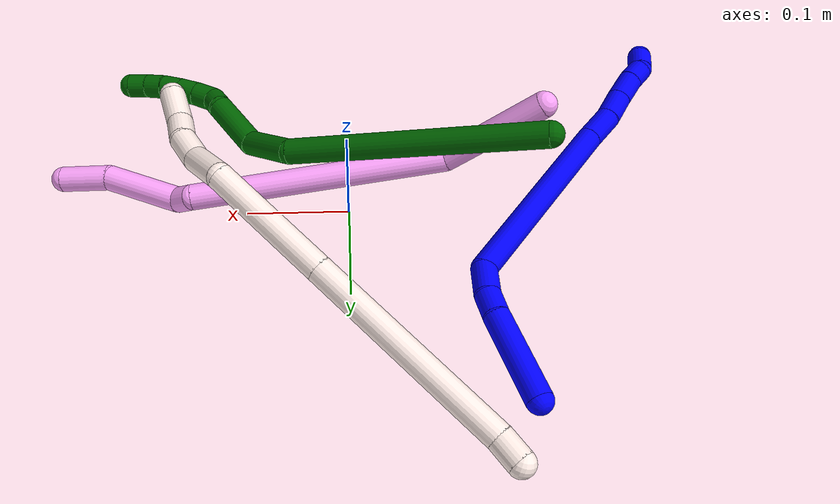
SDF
<sdf version="1.7">
 <world name="default">
  <model name="1">
   <static>0</static>
   <link name="1">
    <collision name="collision-cylinder-e_1_1_4">
     <pose>-0.011994 0.00322 0.041708 -0.077057 -0.279239 0.010834</pose>
     <geometry><cylinder><radius>0.0125</radius><length>0.087035</length></cylinder></geometry>
     <surface>
      <friction><ode><mu>1.16</mu><mu2>1.16</mu2><slip1>0</slip1><slip2>0</slip2></ode></friction>
      <contact><ode><kp>1e+06</kp><kd>1</kd><max_vel>0</max_vel><min_depth>0.001</min_depth></ode></contact>
     </surface>
    </collision>
    <visual name="visual-cylinder-e_1_1_4">
     <pose>-0.011994 0.00322 0.041708 -0.077057 -0.279239 0.010834</pose>
     <geometry><cylinder><radius>0.0125</radius><length>0.087035</length></cylinder></geometry>
     <material><ambient>0 0 1 1</ambient></material>
    </visual>
    <collision name="collision-cylinder-e_2_4_5">
     <pose>-0.026558 0.005566 0.095098 0.074744 -0.215849 -0.008102</pose>
     <geometry><cylinder><radius>0.0125</radius><length>0.023987</length></cylinder></geometry>
     <surface>
      <friction><ode><mu>1.16</mu><mu2>1.16</mu2><slip1>0</slip1><slip2>0</slip2></ode></friction>
      <contact><ode><kp>1e+06</kp><kd>1</kd><max_vel>0</max_vel><min_depth>0.001</min_depth></ode></contact>
     </surface>
    </collision>
    <visual name="visual-cylinder-e_2_4_5">
     <pose>-0.026558 0.005566 0.095098 0.074744 -0.215849 -0.008102</pose>
     <geometry><cylinder><radius>0.0125</radius><length>0.023987</length></cylinder></geometry>
     <material><ambient>0 0 1 1</ambient></material>
    </visual>
    <collision name="collision-cylinder-e_3_5_6">
     <pose>-0.032827 -0.000158 0.121903 0.310249 -0.228925 -0.035953</pose>
     <geometry><cylinder><radius>0.0125</radius><length>0.032613</length></cylinder></geometry>
     <surface>
      <friction><ode><mu>1.16</mu><mu2>1.16</mu2><slip1>0</slip1><slip2>0</slip2></ode></friction>
      <contact><ode><kp>1e+06</kp><kd>1</kd><max_vel>0</max_vel><min_depth>0.001</min_depth></ode></contact>
     </surface>
    </collision>
    <visual name="visual-cylinder-e_3_5_6">
     <pose>-0.032827 -0.000158 0.121903 0.310249 -0.228925 -0.035953</pose>
     <geometry><cylinder><radius>0.0125</radius><length>0.032613</length></cylinder></geometry>
     <material><ambient>0 0 1 1</ambient></material>
    </visual>
    <collision name="collision-cylinder-e_4_6_7">
     <pose>-0.081364 -0.08303 0.19201 0.956925 -0.43914 -0.23047</pose>
     <geometry><cylinder><radius>0.0125</radius><length>0.210915</length></cylinder></geometry>
     <surface>
      <friction><ode><mu>1.16</mu><mu2>1.16</mu2><slip1>0</slip1><slip2>0</slip2></ode></friction>
      <contact><ode><kp>1e+06</kp><kd>1</kd><max_vel>0</max_vel><min_depth>0.001</min_depth></ode></contact>
     </surface>
    </collision>
    <visual name="visual-cylinder-e_4_6_7">
     <pose>-0.081364 -0.08303 0.19201 0.956925 -0.43914 -0.23047</pose>
     <geometry><cylinder><radius>0.0125</radius><length>0.210915</length></cylinder></geometry>
     <material><ambient>0 0 1 1</ambient></material>
    </visual>
    <collision name="collision-cylinder-e_5_7_8">
     <pose>-0.134882 -0.175428 0.255885 1.01679 -0.474532 -0.267896</pose>
     <geometry><cylinder><radius>0.0125</radius><length>0.038003</length></cylinder></geometry>
     <surface>
      <friction><ode><mu>1.16</mu><mu2>1.16</mu2><slip1>0</slip1><slip2>0</slip2></ode></friction>
      <contact><ode><kp>1e+06</kp><kd>1</kd><max_vel>0</max_vel><min_depth>0.001</min_depth></ode></contact>
     </surface>
    </collision>
    <visual name="visual-cylinder-e_5_7_8">
     <pose>-0.134882 -0.175428 0.255885 1.01679 -0.474532 -0.267896</pose>
     <geometry><cylinder><radius>0.0125</radius><length>0.038003</length></cylinder></geometry>
     <material><ambient>0 0 1 1</ambient></material>
    </visual>
    <collision name="collision-cylinder-e_6_8_9">
     <pose>-0.15142 -0.199662 0.273566 0.842749 -0.536527 -0.245187</pose>
     <geometry><cylinder><radius>0.0125</radius><length>0.030735</length></cylinder></geometry>
     <surface>
      <friction><ode><mu>1.16</mu><mu2>1.16</mu2><slip1>0</slip1><slip2>0</slip2></ode></friction>
      <contact><ode><kp>1e+06</kp><kd>1</kd><max_vel>0</max_vel><min_depth>0.001</min_depth></ode></contact>
     </surface>
    </collision>
    <visual name="visual-cylinder-e_6_8_9">
     <pose>-0.15142 -0.199662 0.273566 0.842749 -0.536527 -0.245187</pose>
     <geometry><cylinder><radius>0.0125</radius><length>0.030735</length></cylinder></geometry>
     <material><ambient>0 0 1 1</ambient></material>
    </visual>
    <collision name="collision-cylinder-e_7_9_10">
     <pose>-0.167282 -0.219442 0.290336 0.893322 -0.561344 -0.274407</pose>
     <geometry><cylinder><radius>0.0125</radius><length>0.030082</length></cylinder></geometry>
     <surface>
      <friction><ode><mu>1.16</mu><mu2>1.16</mu2><slip1>0</slip1><slip2>0</slip2></ode></friction>
      <contact><ode><kp>1e+06</kp><kd>1</kd><max_vel>0</max_vel><min_depth>0.001</min_depth></ode></contact>
     </surface>
    </collision>
    <visual name="visual-cylinder-e_7_9_10">
     <pose>-0.167282 -0.219442 0.290336 0.893322 -0.561344 -0.274407</pose>
     <geometry><cylinder><radius>0.0125</radius><length>0.030082</length></cylinder></geometry>
     <material><ambient>0 0 1 1</ambient></material>
    </visual>
    <collision name="collision-cylinder-e_8_10_11">
     <pose>-0.180578 -0.23702 0.302802 1.04102 -0.537574 -0.313215</pose>
     <geometry><cylinder><radius>0.0125</radius><length>0.020661</length></cylinder></geometry>
     <surface>
      <friction><ode><mu>1.16</mu><mu2>1.16</mu2><slip1>0</slip1><slip2>0</slip2></ode></friction>
      <contact><ode><kp>1e+06</kp><kd>1</kd><max_vel>0</max_vel><min_depth>0.001</min_depth></ode></contact>
     </surface>
    </collision>
    <visual name="visual-cylinder-e_8_10_11">
     <pose>-0.180578 -0.23702 0.302802 1.04102 -0.537574 -0.313215</pose>
     <geometry><cylinder><radius>0.0125</radius><length>0.020661</length></cylinder></geometry>
     <material><ambient>0 0 1 1</ambient></material>
    </visual>
    <collision name="collision-cylinder-e_9_11_2">
     <pose>-0.189202 -0.250807 0.318236 0.51037 -0.259677 -0.0681</pose>
     <geometry><cylinder><radius>0.0125</radius><length>0.025969</length></cylinder></geometry>
     <surface>
      <friction><ode><mu>1.16</mu><mu2>1.16</mu2><slip1>0</slip1><slip2>0</slip2></ode></friction>
      <contact><ode><kp>1e+06</kp><kd>1</kd><max_vel>0</max_vel><min_depth>0.001</min_depth></ode></contact>
     </surface>
    </collision>
    <visual name="visual-cylinder-e_9_11_2">
     <pose>-0.189202 -0.250807 0.318236 0.51037 -0.259677 -0.0681</pose>
     <geometry><cylinder><radius>0.0125</radius><length>0.025969</length></cylinder></geometry>
     <material><ambient>0 0 1 1</ambient></material>
    </visual>
    <collision name="collision-sphere-2">
     <pose>-0.192536 -0.256938 0.329186 0 -0 0</pose>
     <geometry><sphere><radius>0.0125</radius></sphere></geometry>
     <surface>
      <friction><ode><mu>1.16</mu><mu2>1.16</mu2><slip1>0</slip1><slip2>0</slip2></ode></friction>
      <contact><ode><kp>1e+06</kp><kd>1</kd><max_vel>0</max_vel><min_depth>0.001</min_depth></ode></contact>
     </surface>
    </collision>
    <visual name="visual-sphere-2">
     <pose>-0.192536 -0.256938 0.329186 0 -0 0</pose>
     <geometry><sphere><radius>0.0125</radius></sphere></geometry>
     <material><ambient>0 0 1 1</ambient></material>
    </visual>
    <collision name="collision-sphere-11">
     <pose>-0.185868 -0.244677 0.307286 0 -0 0</pose>
     <geometry><sphere><radius>0.0125</radius></sphere></geometry>
     <surface>
      <friction><ode><mu>1.16</mu><mu2>1.16</mu2><slip1>0</slip1><slip2>0</slip2></ode></friction>
      <contact><ode><kp>1e+06</kp><kd>1</kd><max_vel>0</max_vel><min_depth>0.001</min_depth></ode></contact>
     </surface>
    </collision>
    <visual name="visual-sphere-11">
     <pose>-0.185868 -0.244677 0.307286 0 -0 0</pose>
     <geometry><sphere><radius>0.0125</radius></sphere></geometry>
     <material><ambient>0 0 1 1</ambient></material>
    </visual>
    <collision name="collision-sphere-10">
     <pose>-0.175288 -0.229363 0.298318 0 -0 0</pose>
     <geometry><sphere><radius>0.0125</radius></sphere></geometry>
     <surface>
      <friction><ode><mu>1.16</mu><mu2>1.16</mu2><slip1>0</slip1><slip2>0</slip2></ode></friction>
      <contact><ode><kp>1e+06</kp><kd>1</kd><max_vel>0</max_vel><min_depth>0.001</min_depth></ode></contact>
     </surface>
    </collision>
    <visual name="visual-sphere-10">
     <pose>-0.175288 -0.229363 0.298318 0 -0 0</pose>
     <geometry><sphere><radius>0.0125</radius></sphere></geometry>
     <material><ambient>0 0 1 1</ambient></material>
    </visual>
    <collision name="collision-sphere-9">
     <pose>-0.159275 -0.209521 0.282355 0 -0 0</pose>
     <geometry><sphere><radius>0.0125</radius></sphere></geometry>
     <surface>
      <friction><ode><mu>1.16</mu><mu2>1.16</mu2><slip1>0</slip1><slip2>0</slip2></ode></friction>
      <contact><ode><kp>1e+06</kp><kd>1</kd><max_vel>0</max_vel><min_depth>0.001</min_depth></ode></contact>
     </surface>
    </collision>
    <visual name="visual-sphere-9">
     <pose>-0.159275 -0.209521 0.282355 0 -0 0</pose>
     <geometry><sphere><radius>0.0125</radius></sphere></geometry>
     <material><ambient>0 0 1 1</ambient></material>
    </visual>
    <collision name="collision-sphere-4">
     <pose>-0.023989 0.006441 0.083416 0 -0 0</pose>
     <geometry><sphere><radius>0.0125</radius></sphere></geometry>
     <surface>
      <friction><ode><mu>1.16</mu><mu2>1.16</mu2><slip1>0</slip1><slip2>0</slip2></ode></friction>
      <contact><ode><kp>1e+06</kp><kd>1</kd><max_vel>0</max_vel><min_depth>0.001</min_depth></ode></contact>
     </surface>
    </collision>
    <visual name="visual-sphere-4">
     <pose>-0.023989 0.006441 0.083416 0 -0 0</pose>
     <geometry><sphere><radius>0.0125</radius></sphere></geometry>
     <material><ambient>0 0 1 1</ambient></material>
    </visual>
    <collision name="collision-sphere-1">
     <geometry><sphere><radius>0.0125</radius></sphere></geometry>
     <surface>
      <friction><ode><mu>1.16</mu><mu2>1.16</mu2><slip1>0</slip1><slip2>0</slip2></ode></friction>
      <contact><ode><kp>1e+06</kp><kd>1</kd><max_vel>0</max_vel><min_depth>0.001</min_depth></ode></contact>
     </surface>
    </collision>
    <visual name="visual-sphere-1">
     <geometry><sphere><radius>0.0125</radius></sphere></geometry>
     <material><ambient>0 0 1 1</ambient></material>
    </visual>
    <collision name="collision-sphere-8">
     <pose>-0.143565 -0.189802 0.264777 0 -0 0</pose>
     <geometry><sphere><radius>0.0125</radius></sphere></geometry>
     <surface>
      <friction><ode><mu>1.16</mu><mu2>1.16</mu2><slip1>0</slip1><slip2>0</slip2></ode></friction>
      <contact><ode><kp>1e+06</kp><kd>1</kd><max_vel>0</max_vel><min_depth>0.001</min_depth></ode></contact>
     </surface>
    </collision>
    <visual name="visual-sphere-8">
     <pose>-0.143565 -0.189802 0.264777 0 -0 0</pose>
     <geometry><sphere><radius>0.0125</radius></sphere></geometry>
     <material><ambient>0 0 1 1</ambient></material>
    </visual>
    <collision name="collision-sphere-5">
     <pose>-0.029126 0.004691 0.10678 0 -0 0</pose>
     <geometry><sphere><radius>0.0125</radius></sphere></geometry>
     <surface>
      <friction><ode><mu>1.16</mu><mu2>1.16</mu2><slip1>0</slip1><slip2>0</slip2></ode></friction>
      <contact><ode><kp>1e+06</kp><kd>1</kd><max_vel>0</max_vel><min_depth>0.001</min_depth></ode></contact>
     </surface>
    </collision>
    <visual name="visual-sphere-5">
     <pose>-0.029126 0.004691 0.10678 0 -0 0</pose>
     <geometry><sphere><radius>0.0125</radius></sphere></geometry>
     <material><ambient>0 0 1 1</ambient></material>
    </visual>
    <collision name="collision-sphere-6">
     <pose>-0.036527 -0.005006 0.137026 0 -0 0</pose>
     <geometry><sphere><radius>0.0125</radius></sphere></geometry>
     <surface>
      <friction><ode><mu>1.16</mu><mu2>1.16</mu2><slip1>0</slip1><slip2>0</slip2></ode></friction>
      <contact><ode><kp>1e+06</kp><kd>1</kd><max_vel>0</max_vel><min_depth>0.001</min_depth></ode></contact>
     </surface>
    </collision>
    <visual name="visual-sphere-6">
     <pose>-0.036527 -0.005006 0.137026 0 -0 0</pose>
     <geometry><sphere><radius>0.0125</radius></sphere></geometry>
     <material><ambient>0 0 1 1</ambient></material>
    </visual>
    <collision name="collision-sphere-7">
     <pose>-0.1262 -0.161055 0.246993 0 -0 0</pose>
     <geometry><sphere><radius>0.0125</radius></sphere></geometry>
     <surface>
      <friction><ode><mu>1.16</mu><mu2>1.16</mu2><slip1>0</slip1><slip2>0</slip2></ode></friction>
      <contact><ode><kp>1e+06</kp><kd>1</kd><max_vel>0</max_vel><min_depth>0.001</min_depth></ode></contact>
     </surface>
    </collision>
    <visual name="visual-sphere-7">
     <pose>-0.1262 -0.161055 0.246993 0 -0 0</pose>
     <geometry><sphere><radius>0.0125</radius></sphere></geometry>
     <material><ambient>0 0 1 1</ambient></material>
    </visual>
    <inertial>
     <pose>-0.086737 -0.095837 0.183543 0 -0 0</pose>
     <mass>0.5</mass>
     <inertia>
      <ixx>0.000592</ixx>
      <ixy>0</ixy>
      <ixz>0</ixz>
      <iyy>0.000395</iyy>
      <iyz>0</iyz>
      <izz>0.00098</izz>
     </inertia>
    </inertial>
   </link>
   <pose>-0.155466 0.221519 0.012494 2.12774 1.12628 0.865992</pose>
  </model>
  <model name="4">
   <static>0</static>
   <link name="4">
    <collision name="collision-cylinder-e_1_1_4">
     <pose>0.031551 -0.006868 0.042739 0.159323 0.629833 0.051999</pose>
     <geometry><cylinder><radius>0.0125</radius><length>0.107131</length></cylinder></geometry>
     <surface>
      <friction><ode><mu>1.16</mu><mu2>1.16</mu2><slip1>0</slip1><slip2>0</slip2></ode></friction>
      <contact><ode><kp>1e+06</kp><kd>1</kd><max_vel>0</max_vel><min_depth>0.001</min_depth></ode></contact>
     </surface>
    </collision>
    <visual name="visual-cylinder-e_1_1_4">
     <pose>0.031551 -0.006868 0.042739 0.159323 0.629833 0.051999</pose>
     <geometry><cylinder><radius>0.0125</radius><length>0.107131</length></cylinder></geometry>
     <material><ambient>1 0.65098 0.996078 1</ambient></material>
    </visual>
    <collision name="collision-cylinder-e_2_4_5">
     <pose>0.17587 -0.006479 0.134181 -0.147898 1.1591 -0.096904</pose>
     <geometry><cylinder><radius>0.0125</radius><length>0.246101</length></cylinder></geometry>
     <surface>
      <friction><ode><mu>1.16</mu><mu2>1.16</mu2><slip1>0</slip1><slip2>0</slip2></ode></friction>
      <contact><ode><kp>1e+06</kp><kd>1</kd><max_vel>0</max_vel><min_depth>0.001</min_depth></ode></contact>
     </surface>
    </collision>
    <visual name="visual-cylinder-e_2_4_5">
     <pose>0.17587 -0.006479 0.134181 -0.147898 1.1591 -0.096904</pose>
     <geometry><cylinder><radius>0.0125</radius><length>0.246101</length></cylinder></geometry>
     <material><ambient>1 0.65098 0.996078 1</ambient></material>
    </visual>
    <collision name="collision-cylinder-e_3_5_6">
     <pose>0.293516 0.00282 0.191477 -0.233365 0.504453 -0.060398</pose>
     <geometry><cylinder><radius>0.0125</radius><length>0.020179</length></cylinder></geometry>
     <surface>
      <friction><ode><mu>1.16</mu><mu2>1.16</mu2><slip1>0</slip1><slip2>0</slip2></ode></friction>
      <contact><ode><kp>1e+06</kp><kd>1</kd><max_vel>0</max_vel><min_depth>0.001</min_depth></ode></contact>
     </surface>
    </collision>
    <visual name="visual-cylinder-e_3_5_6">
     <pose>0.293516 0.00282 0.191477 -0.233365 0.504453 -0.060398</pose>
     <geometry><cylinder><radius>0.0125</radius><length>0.020179</length></cylinder></geometry>
     <material><ambient>1 0.65098 0.996078 1</ambient></material>
    </visual>
    <collision name="collision-cylinder-e_4_6_7">
     <pose>0.327185 0.024846 0.216945 -0.869588 0.833358 -0.405466</pose>
     <geometry><cylinder><radius>0.0125</radius><length>0.077797</length></cylinder></geometry>
     <surface>
      <friction><ode><mu>1.16</mu><mu2>1.16</mu2><slip1>0</slip1><slip2>0</slip2></ode></friction>
      <contact><ode><kp>1e+06</kp><kd>1</kd><max_vel>0</max_vel><min_depth>0.001</min_depth></ode></contact>
     </surface>
    </collision>
    <visual name="visual-cylinder-e_4_6_7">
     <pose>0.327185 0.024846 0.216945 -0.869588 0.833358 -0.405466</pose>
     <geometry><cylinder><radius>0.0125</radius><length>0.077797</length></cylinder></geometry>
     <material><ambient>1 0.65098 0.996078 1</ambient></material>
    </visual>
    <collision name="collision-cylinder-e_5_7_2">
     <pose>0.376702 0.049994 0.245608 -0.412828 1.01504 -0.231848</pose>
     <geometry><cylinder><radius>0.0125</radius><length>0.048792</length></cylinder></geometry>
     <surface>
      <friction><ode><mu>1.16</mu><mu2>1.16</mu2><slip1>0</slip1><slip2>0</slip2></ode></friction>
      <contact><ode><kp>1e+06</kp><kd>1</kd><max_vel>0</max_vel><min_depth>0.001</min_depth></ode></contact>
     </surface>
    </collision>
    <visual name="visual-cylinder-e_5_7_2">
     <pose>0.376702 0.049994 0.245608 -0.412828 1.01504 -0.231848</pose>
     <geometry><cylinder><radius>0.0125</radius><length>0.048792</length></cylinder></geometry>
     <material><ambient>1 0.65098 0.996078 1</ambient></material>
    </visual>
    <collision name="collision-sphere-2">
     <pose>0.397426 0.055158 0.257398 0 -0 0</pose>
     <geometry><sphere><radius>0.0125</radius></sphere></geometry>
     <surface>
      <friction><ode><mu>1.16</mu><mu2>1.16</mu2><slip1>0</slip1><slip2>0</slip2></ode></friction>
      <contact><ode><kp>1e+06</kp><kd>1</kd><max_vel>0</max_vel><min_depth>0.001</min_depth></ode></contact>
     </surface>
    </collision>
    <visual name="visual-sphere-2">
     <pose>0.397426 0.055158 0.257398 0 -0 0</pose>
     <geometry><sphere><radius>0.0125</radius></sphere></geometry>
     <material><ambient>1 0.65098 0.996078 1</ambient></material>
    </visual>
    <collision name="collision-sphere-7">
     <pose>0.355977 0.044831 0.233819 0 -0 0</pose>
     <geometry><sphere><radius>0.0125</radius></sphere></geometry>
     <surface>
      <friction><ode><mu>1.16</mu><mu2>1.16</mu2><slip1>0</slip1><slip2>0</slip2></ode></friction>
      <contact><ode><kp>1e+06</kp><kd>1</kd><max_vel>0</max_vel><min_depth>0.001</min_depth></ode></contact>
     </surface>
    </collision>
    <visual name="visual-sphere-7">
     <pose>0.355977 0.044831 0.233819 0 -0 0</pose>
     <geometry><sphere><radius>0.0125</radius></sphere></geometry>
     <material><ambient>1 0.65098 0.996078 1</ambient></material>
    </visual>
    <collision name="collision-sphere-6">
     <pose>0.298392 0.004862 0.200071 0 -0 0</pose>
     <geometry><sphere><radius>0.0125</radius></sphere></geometry>
     <surface>
      <friction><ode><mu>1.16</mu><mu2>1.16</mu2><slip1>0</slip1><slip2>0</slip2></ode></friction>
      <contact><ode><kp>1e+06</kp><kd>1</kd><max_vel>0</max_vel><min_depth>0.001</min_depth></ode></contact>
     </surface>
    </collision>
    <visual name="visual-sphere-6">
     <pose>0.298392 0.004862 0.200071 0 -0 0</pose>
     <geometry><sphere><radius>0.0125</radius></sphere></geometry>
     <material><ambient>1 0.65098 0.996078 1</ambient></material>
    </visual>
    <collision name="collision-sphere-5">
     <pose>0.288639 0.000777 0.182884 0 -0 0</pose>
     <geometry><sphere><radius>0.0125</radius></sphere></geometry>
     <surface>
      <friction><ode><mu>1.16</mu><mu2>1.16</mu2><slip1>0</slip1><slip2>0</slip2></ode></friction>
      <contact><ode><kp>1e+06</kp><kd>1</kd><max_vel>0</max_vel><min_depth>0.001</min_depth></ode></contact>
     </surface>
    </collision>
    <visual name="visual-sphere-5">
     <pose>0.288639 0.000777 0.182884 0 -0 0</pose>
     <geometry><sphere><radius>0.0125</radius></sphere></geometry>
     <material><ambient>1 0.65098 0.996078 1</ambient></material>
    </visual>
    <collision name="collision-sphere-1">
     <geometry><sphere><radius>0.0125</radius></sphere></geometry>
     <surface>
      <friction><ode><mu>1.16</mu><mu2>1.16</mu2><slip1>0</slip1><slip2>0</slip2></ode></friction>
      <contact><ode><kp>1e+06</kp><kd>1</kd><max_vel>0</max_vel><min_depth>0.001</min_depth></ode></contact>
     </surface>
    </collision>
    <visual name="visual-sphere-1">
     <geometry><sphere><radius>0.0125</radius></sphere></geometry>
     <material><ambient>1 0.65098 0.996078 1</ambient></material>
    </visual>
    <collision name="collision-sphere-4">
     <pose>0.063101 -0.013735 0.085479 0 -0 0</pose>
     <geometry><sphere><radius>0.0125</radius></sphere></geometry>
     <surface>
      <friction><ode><mu>1.16</mu><mu2>1.16</mu2><slip1>0</slip1><slip2>0</slip2></ode></friction>
      <contact><ode><kp>1e+06</kp><kd>1</kd><max_vel>0</max_vel><min_depth>0.001</min_depth></ode></contact>
     </surface>
    </collision>
    <visual name="visual-sphere-4">
     <pose>0.063101 -0.013735 0.085479 0 -0 0</pose>
     <geometry><sphere><radius>0.0125</radius></sphere></geometry>
     <material><ambient>1 0.65098 0.996078 1</ambient></material>
    </visual>
    <inertial>
     <pose>0.192837 0.004198 0.140652 0 -0 0</pose>
     <mass>0.5</mass>
     <inertia>
      <ixx>0.000592</ixx>
      <ixy>0</ixy>
      <ixz>0</ixz>
      <iyy>0.001349</iyy>
      <iyz>0</iyz>
      <izz>-0.001316</izz>
     </inertia>
    </inertial>
   </link>
   <pose>-0.176976 -0.012053 0.127592 2.68938 -0.219072 0.295127</pose>
  </model>
  <model name="6">
   <static>0</static>
   <link name="6">
    <collision name="collision-cylinder-e_1_1_4">
     <pose>0.081111 -0.096716 -0.009121 1.66482 0.69569 0.758237</pose>
     <geometry><cylinder><radius>0.0125</radius><length>0.253109</length></cylinder></geometry>
     <surface>
      <friction><ode><mu>1.16</mu><mu2>1.16</mu2><slip1>0</slip1><slip2>0</slip2></ode></friction>
      <contact><ode><kp>1e+06</kp><kd>1</kd><max_vel>0</max_vel><min_depth>0.001</min_depth></ode></contact>
     </surface>
    </collision>
    <visual name="visual-cylinder-e_1_1_4">
     <pose>0.081111 -0.096716 -0.009121 1.66482 0.69569 0.758237</pose>
     <geometry><cylinder><radius>0.0125</radius><length>0.253109</length></cylinder></geometry>
     <material><ambient>0 0.392157 0.003922 1</ambient></material>
    </visual>
    <collision name="collision-cylinder-e_2_4_5">
     <pose>0.186276 -0.206741 -0.031035 2.33639 0.916197 1.71684</pose>
     <geometry><cylinder><radius>0.0125</radius><length>0.060644</length></cylinder></geometry>
     <surface>
      <friction><ode><mu>1.16</mu><mu2>1.16</mu2><slip1>0</slip1><slip2>0</slip2></ode></friction>
      <contact><ode><kp>1e+06</kp><kd>1</kd><max_vel>0</max_vel><min_depth>0.001</min_depth></ode></contact>
     </surface>
    </collision>
    <visual name="visual-cylinder-e_2_4_5">
     <pose>0.186276 -0.206741 -0.031035 2.33639 0.916197 1.71684</pose>
     <geometry><cylinder><radius>0.0125</radius><length>0.060644</length></cylinder></geometry>
     <material><ambient>0 0.392157 0.003922 1</ambient></material>
    </visual>
    <collision name="collision-cylinder-e_3_5_6">
     <pose>0.222698 -0.235316 -0.067288 2.56476 0.416086 1.23683</pose>
     <geometry><cylinder><radius>0.0125</radius><length>0.061201</length></cylinder></geometry>
     <surface>
      <friction><ode><mu>1.16</mu><mu2>1.16</mu2><slip1>0</slip1><slip2>0</slip2></ode></friction>
      <contact><ode><kp>1e+06</kp><kd>1</kd><max_vel>0</max_vel><min_depth>0.001</min_depth></ode></contact>
     </surface>
    </collision>
    <visual name="visual-cylinder-e_3_5_6">
     <pose>0.222698 -0.235316 -0.067288 2.56476 0.416086 1.23683</pose>
     <geometry><cylinder><radius>0.0125</radius><length>0.061201</length></cylinder></geometry>
     <material><ambient>0 0.392157 0.003922 1</ambient></material>
    </visual>
    <collision name="collision-cylinder-e_4_6_7">
     <pose>0.242748 -0.252946 -0.098498 2.84531 0.758777 2.42528</pose>
     <geometry><cylinder><radius>0.0125</radius><length>0.022328</length></cylinder></geometry>
     <surface>
      <friction><ode><mu>1.16</mu><mu2>1.16</mu2><slip1>0</slip1><slip2>0</slip2></ode></friction>
      <contact><ode><kp>1e+06</kp><kd>1</kd><max_vel>0</max_vel><min_depth>0.001</min_depth></ode></contact>
     </surface>
    </collision>
    <visual name="visual-cylinder-e_4_6_7">
     <pose>0.242748 -0.252946 -0.098498 2.84531 0.758777 2.42528</pose>
     <geometry><cylinder><radius>0.0125</radius><length>0.022328</length></cylinder></geometry>
     <material><ambient>0 0.392157 0.003922 1</ambient></material>
    </visual>
    <collision name="collision-cylinder-e_5_7_8">
     <pose>0.256208 -0.26364 -0.110887 2.07911 0.544906 0.887724</pose>
     <geometry><cylinder><radius>0.0125</radius><length>0.022299</length></cylinder></geometry>
     <surface>
      <friction><ode><mu>1.16</mu><mu2>1.16</mu2><slip1>0</slip1><slip2>0</slip2></ode></friction>
      <contact><ode><kp>1e+06</kp><kd>1</kd><max_vel>0</max_vel><min_depth>0.001</min_depth></ode></contact>
     </surface>
    </collision>
    <visual name="visual-cylinder-e_5_7_8">
     <pose>0.256208 -0.26364 -0.110887 2.07911 0.544906 0.887724</pose>
     <geometry><cylinder><radius>0.0125</radius><length>0.022299</length></cylinder></geometry>
     <material><ambient>0 0.392157 0.003922 1</ambient></material>
    </visual>
    <collision name="collision-cylinder-e_6_8_9">
     <pose>0.267122 -0.28 -0.11891 1.96946 0.53244 0.779498</pose>
     <geometry><cylinder><radius>0.0125</radius><length>0.020229</length></cylinder></geometry>
     <surface>
      <friction><ode><mu>1.16</mu><mu2>1.16</mu2><slip1>0</slip1><slip2>0</slip2></ode></friction>
      <contact><ode><kp>1e+06</kp><kd>1</kd><max_vel>0</max_vel><min_depth>0.001</min_depth></ode></contact>
     </surface>
    </collision>
    <visual name="visual-cylinder-e_6_8_9">
     <pose>0.267122 -0.28 -0.11891 1.96946 0.53244 0.779498</pose>
     <geometry><cylinder><radius>0.0125</radius><length>0.020229</length></cylinder></geometry>
     <material><ambient>0 0.392157 0.003922 1</ambient></material>
    </visual>
    <collision name="collision-cylinder-e_7_9_10">
     <pose>0.277369 -0.296265 -0.124997 1.88816 0.53294 0.720988</pose>
     <geometry><cylinder><radius>0.0125</radius><length>0.020125</length></cylinder></geometry>
     <surface>
      <friction><ode><mu>1.16</mu><mu2>1.16</mu2><slip1>0</slip1><slip2>0</slip2></ode></friction>
      <contact><ode><kp>1e+06</kp><kd>1</kd><max_vel>0</max_vel><min_depth>0.001</min_depth></ode></contact>
     </surface>
    </collision>
    <visual name="visual-cylinder-e_7_9_10">
     <pose>0.277369 -0.296265 -0.124997 1.88816 0.53294 0.720988</pose>
     <geometry><cylinder><radius>0.0125</radius><length>0.020125</length></cylinder></geometry>
     <material><ambient>0 0.392157 0.003922 1</ambient></material>
    </visual>
    <collision name="collision-cylinder-e_8_10_11">
     <pose>0.288397 -0.312331 -0.129688 1.81913 0.632007 0.795623</pose>
     <geometry><cylinder><radius>0.0125</radius><length>0.020027</length></cylinder></geometry>
     <surface>
      <friction><ode><mu>1.16</mu><mu2>1.16</mu2><slip1>0</slip1><slip2>0</slip2></ode></friction>
      <contact><ode><kp>1e+06</kp><kd>1</kd><max_vel>0</max_vel><min_depth>0.001</min_depth></ode></contact>
     </surface>
    </collision>
    <visual name="visual-cylinder-e_8_10_11">
     <pose>0.288397 -0.312331 -0.129688 1.81913 0.632007 0.795623</pose>
     <geometry><cylinder><radius>0.0125</radius><length>0.020027</length></cylinder></geometry>
     <material><ambient>0 0.392157 0.003922 1</ambient></material>
    </visual>
    <collision name="collision-cylinder-e_9_11_2">
     <pose>0.299418 -0.328737 -0.132565 1.67442 0.534755 0.590065</pose>
     <geometry><cylinder><radius>0.0125</radius><length>0.020038</length></cylinder></geometry>
     <surface>
      <friction><ode><mu>1.16</mu><mu2>1.16</mu2><slip1>0</slip1><slip2>0</slip2></ode></friction>
      <contact><ode><kp>1e+06</kp><kd>1</kd><max_vel>0</max_vel><min_depth>0.001</min_depth></ode></contact>
     </surface>
    </collision>
    <visual name="visual-cylinder-e_9_11_2">
     <pose>0.299418 -0.328737 -0.132565 1.67442 0.534755 0.590065</pose>
     <geometry><cylinder><radius>0.0125</radius><length>0.020038</length></cylinder></geometry>
     <material><ambient>0 0.392157 0.003922 1</ambient></material>
    </visual>
    <collision name="collision-sphere-2">
     <pose>0.304524 -0.337311 -0.133457 0 -0 0</pose>
     <geometry><sphere><radius>0.0125</radius></sphere></geometry>
     <surface>
      <friction><ode><mu>1.16</mu><mu2>1.16</mu2><slip1>0</slip1><slip2>0</slip2></ode></friction>
      <contact><ode><kp>1e+06</kp><kd>1</kd><max_vel>0</max_vel><min_depth>0.001</min_depth></ode></contact>
     </surface>
    </collision>
    <visual name="visual-sphere-2">
     <pose>0.304524 -0.337311 -0.133457 0 -0 0</pose>
     <geometry><sphere><radius>0.0125</radius></sphere></geometry>
     <material><ambient>0 0.392157 0.003922 1</ambient></material>
    </visual>
    <collision name="collision-sphere-11">
     <pose>0.294312 -0.320163 -0.131674 0 -0 0</pose>
     <geometry><sphere><radius>0.0125</radius></sphere></geometry>
     <surface>
      <friction><ode><mu>1.16</mu><mu2>1.16</mu2><slip1>0</slip1><slip2>0</slip2></ode></friction>
      <contact><ode><kp>1e+06</kp><kd>1</kd><max_vel>0</max_vel><min_depth>0.001</min_depth></ode></contact>
     </surface>
    </collision>
    <visual name="visual-sphere-11">
     <pose>0.294312 -0.320163 -0.131674 0 -0 0</pose>
     <geometry><sphere><radius>0.0125</radius></sphere></geometry>
     <material><ambient>0 0.392157 0.003922 1</ambient></material>
    </visual>
    <collision name="collision-sphere-10">
     <pose>0.282481 -0.3045 -0.127702 0 -0 0</pose>
     <geometry><sphere><radius>0.0125</radius></sphere></geometry>
     <surface>
      <friction><ode><mu>1.16</mu><mu2>1.16</mu2><slip1>0</slip1><slip2>0</slip2></ode></friction>
      <contact><ode><kp>1e+06</kp><kd>1</kd><max_vel>0</max_vel><min_depth>0.001</min_depth></ode></contact>
     </surface>
    </collision>
    <visual name="visual-sphere-10">
     <pose>0.282481 -0.3045 -0.127702 0 -0 0</pose>
     <geometry><sphere><radius>0.0125</radius></sphere></geometry>
     <material><ambient>0 0.392157 0.003922 1</ambient></material>
    </visual>
    <collision name="collision-sphere-9">
     <pose>0.272256 -0.288031 -0.122293 0 -0 0</pose>
     <geometry><sphere><radius>0.0125</radius></sphere></geometry>
     <surface>
      <friction><ode><mu>1.16</mu><mu2>1.16</mu2><slip1>0</slip1><slip2>0</slip2></ode></friction>
      <contact><ode><kp>1e+06</kp><kd>1</kd><max_vel>0</max_vel><min_depth>0.001</min_depth></ode></contact>
     </surface>
    </collision>
    <visual name="visual-sphere-9">
     <pose>0.272256 -0.288031 -0.122293 0 -0 0</pose>
     <geometry><sphere><radius>0.0125</radius></sphere></geometry>
     <material><ambient>0 0.392157 0.003922 1</ambient></material>
    </visual>
    <collision name="collision-sphere-4">
     <pose>0.162222 -0.193431 -0.018242 0 -0 0</pose>
     <geometry><sphere><radius>0.0125</radius></sphere></geometry>
     <surface>
      <friction><ode><mu>1.16</mu><mu2>1.16</mu2><slip1>0</slip1><slip2>0</slip2></ode></friction>
      <contact><ode><kp>1e+06</kp><kd>1</kd><max_vel>0</max_vel><min_depth>0.001</min_depth></ode></contact>
     </surface>
    </collision>
    <visual name="visual-sphere-4">
     <pose>0.162222 -0.193431 -0.018242 0 -0 0</pose>
     <geometry><sphere><radius>0.0125</radius></sphere></geometry>
     <material><ambient>0 0.392157 0.003922 1</ambient></material>
    </visual>
    <collision name="collision-sphere-1">
     <geometry><sphere><radius>0.0125</radius></sphere></geometry>
     <surface>
      <friction><ode><mu>1.16</mu><mu2>1.16</mu2><slip1>0</slip1><slip2>0</slip2></ode></friction>
      <contact><ode><kp>1e+06</kp><kd>1</kd><max_vel>0</max_vel><min_depth>0.001</min_depth></ode></contact>
     </surface>
    </collision>
    <visual name="visual-sphere-1">
     <geometry><sphere><radius>0.0125</radius></sphere></geometry>
     <material><ambient>0 0.392157 0.003922 1</ambient></material>
    </visual>
    <collision name="collision-sphere-8">
     <pose>0.261987 -0.27197 -0.115527 0 -0 0</pose>
     <geometry><sphere><radius>0.0125</radius></sphere></geometry>
     <surface>
      <friction><ode><mu>1.16</mu><mu2>1.16</mu2><slip1>0</slip1><slip2>0</slip2></ode></friction>
      <contact><ode><kp>1e+06</kp><kd>1</kd><max_vel>0</max_vel><min_depth>0.001</min_depth></ode></contact>
     </surface>
    </collision>
    <visual name="visual-sphere-8">
     <pose>0.261987 -0.27197 -0.115527 0 -0 0</pose>
     <geometry><sphere><radius>0.0125</radius></sphere></geometry>
     <material><ambient>0 0.392157 0.003922 1</ambient></material>
    </visual>
    <collision name="collision-sphere-5">
     <pose>0.21033 -0.220051 -0.043828 0 -0 0</pose>
     <geometry><sphere><radius>0.0125</radius></sphere></geometry>
     <surface>
      <friction><ode><mu>1.16</mu><mu2>1.16</mu2><slip1>0</slip1><slip2>0</slip2></ode></friction>
      <contact><ode><kp>1e+06</kp><kd>1</kd><max_vel>0</max_vel><min_depth>0.001</min_depth></ode></contact>
     </surface>
    </collision>
    <visual name="visual-sphere-5">
     <pose>0.21033 -0.220051 -0.043828 0 -0 0</pose>
     <geometry><sphere><radius>0.0125</radius></sphere></geometry>
     <material><ambient>0 0.392157 0.003922 1</ambient></material>
    </visual>
    <collision name="collision-sphere-6">
     <pose>0.235066 -0.250581 -0.090749 0 -0 0</pose>
     <geometry><sphere><radius>0.0125</radius></sphere></geometry>
     <surface>
      <friction><ode><mu>1.16</mu><mu2>1.16</mu2><slip1>0</slip1><slip2>0</slip2></ode></friction>
      <contact><ode><kp>1e+06</kp><kd>1</kd><max_vel>0</max_vel><min_depth>0.001</min_depth></ode></contact>
     </surface>
    </collision>
    <visual name="visual-sphere-6">
     <pose>0.235066 -0.250581 -0.090749 0 -0 0</pose>
     <geometry><sphere><radius>0.0125</radius></sphere></geometry>
     <material><ambient>0 0.392157 0.003922 1</ambient></material>
    </visual>
    <collision name="collision-sphere-7">
     <pose>0.250429 -0.255311 -0.106246 0 -0 0</pose>
     <geometry><sphere><radius>0.0125</radius></sphere></geometry>
     <surface>
      <friction><ode><mu>1.16</mu><mu2>1.16</mu2><slip1>0</slip1><slip2>0</slip2></ode></friction>
      <contact><ode><kp>1e+06</kp><kd>1</kd><max_vel>0</max_vel><min_depth>0.001</min_depth></ode></contact>
     </surface>
    </collision>
    <visual name="visual-sphere-7">
     <pose>0.250429 -0.255311 -0.106246 0 -0 0</pose>
     <geometry><sphere><radius>0.0125</radius></sphere></geometry>
     <material><ambient>0 0.392157 0.003922 1</ambient></material>
    </visual>
    <inertial>
     <pose>0.1587 -0.174828 -0.04631 0 -0 0</pose>
     <mass>0.5</mass>
     <inertia>
      <ixx>0.001546</ixx>
      <ixy>0</ixy>
      <ixz>0</ixz>
      <iyy>0.001248</iyy>
      <iyz>0</iyz>
      <izz>0.000153</izz>
     </inertia>
    </inertial>
   </link>
   <pose>-0.179407 0.020197 0.122137 -2.33236 1.08125 -0.748341</pose>
  </model>
  <model name="11">
   <static>0</static>
   <link name="11">
    <collision name="collision-cylinder-e_1_1_4">
     <pose>0.004802 -0.011626 0.003366 1.28895 0.377667 0.285297</pose>
     <geometry><cylinder><radius>0.0125</radius><length>0.026042</length></cylinder></geometry>
     <surface>
      <friction><ode><mu>1.16</mu><mu2>1.16</mu2><slip1>0</slip1><slip2>0</slip2></ode></friction>
      <contact><ode><kp>1e+06</kp><kd>1</kd><max_vel>0</max_vel><min_depth>0.001</min_depth></ode></contact>
     </surface>
    </collision>
    <visual name="visual-cylinder-e_1_1_4">
     <pose>0.004802 -0.011626 0.003366 1.28895 0.377667 0.285297</pose>
     <geometry><cylinder><radius>0.0125</radius><length>0.026042</length></cylinder></geometry>
     <material><ambient>1 0.933333 0.909804 1</ambient></material>
    </visual>
    <collision name="collision-cylinder-e_2_4_5">
     <pose>0.066975 -0.10103 0.035326 1.21851 0.605563 0.429258</pose>
     <geometry><cylinder><radius>0.0125</radius><length>0.201579</length></cylinder></geometry>
     <surface>
      <friction><ode><mu>1.16</mu><mu2>1.16</mu2><slip1>0</slip1><slip2>0</slip2></ode></friction>
      <contact><ode><kp>1e+06</kp><kd>1</kd><max_vel>0</max_vel><min_depth>0.001</min_depth></ode></contact>
     </surface>
    </collision>
    <visual name="visual-cylinder-e_2_4_5">
     <pose>0.066975 -0.10103 0.035326 1.21851 0.605563 0.429258</pose>
     <geometry><cylinder><radius>0.0125</radius><length>0.201579</length></cylinder></geometry>
     <material><ambient>1 0.933333 0.909804 1</ambient></material>
    </visual>
    <collision name="collision-cylinder-e_3_5_6">
     <pose>0.159885 -0.226161 0.081756 1.21054 0.612276 0.430606</pose>
     <geometry><cylinder><radius>0.0125</radius><length>0.123669</length></cylinder></geometry>
     <surface>
      <friction><ode><mu>1.16</mu><mu2>1.16</mu2><slip1>0</slip1><slip2>0</slip2></ode></friction>
      <contact><ode><kp>1e+06</kp><kd>1</kd><max_vel>0</max_vel><min_depth>0.001</min_depth></ode></contact>
     </surface>
    </collision>
    <visual name="visual-cylinder-e_3_5_6">
     <pose>0.159885 -0.226161 0.081756 1.21054 0.612276 0.430606</pose>
     <geometry><cylinder><radius>0.0125</radius><length>0.123669</length></cylinder></geometry>
     <material><ambient>1 0.933333 0.909804 1</ambient></material>
    </visual>
    <collision name="collision-cylinder-e_4_6_7">
     <pose>0.199549 -0.297448 0.096421 1.70263 0.169239 0.193022</pose>
     <geometry><cylinder><radius>0.0125</radius><length>0.048985</length></cylinder></geometry>
     <surface>
      <friction><ode><mu>1.16</mu><mu2>1.16</mu2><slip1>0</slip1><slip2>0</slip2></ode></friction>
      <contact><ode><kp>1e+06</kp><kd>1</kd><max_vel>0</max_vel><min_depth>0.001</min_depth></ode></contact>
     </surface>
    </collision>
    <visual name="visual-cylinder-e_4_6_7">
     <pose>0.199549 -0.297448 0.096421 1.70263 0.169239 0.193022</pose>
     <geometry><cylinder><radius>0.0125</radius><length>0.048985</length></cylinder></geometry>
     <material><ambient>1 0.933333 0.909804 1</ambient></material>
    </visual>
    <collision name="collision-cylinder-e_5_7_8">
     <pose>0.207467 -0.336458 0.096298 1.37113 0.241764 0.19806</pose>
     <geometry><cylinder><radius>0.0125</radius><length>0.031688</length></cylinder></geometry>
     <surface>
      <friction><ode><mu>1.16</mu><mu2>1.16</mu2><slip1>0</slip1><slip2>0</slip2></ode></friction>
      <contact><ode><kp>1e+06</kp><kd>1</kd><max_vel>0</max_vel><min_depth>0.001</min_depth></ode></contact>
     </surface>
    </collision>
    <visual name="visual-cylinder-e_5_7_8">
     <pose>0.207467 -0.336458 0.096298 1.37113 0.241764 0.19806</pose>
     <geometry><cylinder><radius>0.0125</radius><length>0.031688</length></cylinder></geometry>
     <material><ambient>1 0.933333 0.909804 1</ambient></material>
    </visual>
    <collision name="collision-cylinder-e_6_8_9">
     <pose>0.210084 -0.365168 0.102128 1.36974 -0.084332 -0.068892</pose>
     <geometry><cylinder><radius>0.0125</radius><length>0.027925</length></cylinder></geometry>
     <surface>
      <friction><ode><mu>1.16</mu><mu2>1.16</mu2><slip1>0</slip1><slip2>0</slip2></ode></friction>
      <contact><ode><kp>1e+06</kp><kd>1</kd><max_vel>0</max_vel><min_depth>0.001</min_depth></ode></contact>
     </surface>
    </collision>
    <visual name="visual-cylinder-e_6_8_9">
     <pose>0.210084 -0.365168 0.102128 1.36974 -0.084332 -0.068892</pose>
     <geometry><cylinder><radius>0.0125</radius><length>0.027925</length></cylinder></geometry>
     <material><ambient>1 0.933333 0.909804 1</ambient></material>
    </visual>
    <collision name="collision-cylinder-e_7_9_2">
     <pose>0.209938 -0.39765 0.111681 1.22575 0.051371 0.036128</pose>
     <geometry><cylinder><radius>0.0125</radius><length>0.040112</length></cylinder></geometry>
     <surface>
      <friction><ode><mu>1.16</mu><mu2>1.16</mu2><slip1>0</slip1><slip2>0</slip2></ode></friction>
      <contact><ode><kp>1e+06</kp><kd>1</kd><max_vel>0</max_vel><min_depth>0.001</min_depth></ode></contact>
     </surface>
    </collision>
    <visual name="visual-cylinder-e_7_9_2">
     <pose>0.209938 -0.39765 0.111681 1.22575 0.051371 0.036128</pose>
     <geometry><cylinder><radius>0.0125</radius><length>0.040112</length></cylinder></geometry>
     <material><ambient>1 0.933333 0.909804 1</ambient></material>
    </visual>
    <collision name="collision-sphere-2">
     <pose>0.210968 -0.416499 0.118456 0 -0 0</pose>
     <geometry><sphere><radius>0.0125</radius></sphere></geometry>
     <surface>
      <friction><ode><mu>1.16</mu><mu2>1.16</mu2><slip1>0</slip1><slip2>0</slip2></ode></friction>
      <contact><ode><kp>1e+06</kp><kd>1</kd><max_vel>0</max_vel><min_depth>0.001</min_depth></ode></contact>
     </surface>
    </collision>
    <visual name="visual-sphere-2">
     <pose>0.210968 -0.416499 0.118456 0 -0 0</pose>
     <geometry><sphere><radius>0.0125</radius></sphere></geometry>
     <material><ambient>1 0.933333 0.909804 1</ambient></material>
    </visual>
    <collision name="collision-sphere-9">
     <pose>0.208908 -0.378801 0.104906 0 -0 0</pose>
     <geometry><sphere><radius>0.0125</radius></sphere></geometry>
     <surface>
      <friction><ode><mu>1.16</mu><mu2>1.16</mu2><slip1>0</slip1><slip2>0</slip2></ode></friction>
      <contact><ode><kp>1e+06</kp><kd>1</kd><max_vel>0</max_vel><min_depth>0.001</min_depth></ode></contact>
     </surface>
    </collision>
    <visual name="visual-sphere-9">
     <pose>0.208908 -0.378801 0.104906 0 -0 0</pose>
     <geometry><sphere><radius>0.0125</radius></sphere></geometry>
     <material><ambient>1 0.933333 0.909804 1</ambient></material>
    </visual>
    <collision name="collision-sphere-4">
     <pose>0.009603 -0.023252 0.006733 0 -0 0</pose>
     <geometry><sphere><radius>0.0125</radius></sphere></geometry>
     <surface>
      <friction><ode><mu>1.16</mu><mu2>1.16</mu2><slip1>0</slip1><slip2>0</slip2></ode></friction>
      <contact><ode><kp>1e+06</kp><kd>1</kd><max_vel>0</max_vel><min_depth>0.001</min_depth></ode></contact>
     </surface>
    </collision>
    <visual name="visual-sphere-4">
     <pose>0.009603 -0.023252 0.006733 0 -0 0</pose>
     <geometry><sphere><radius>0.0125</radius></sphere></geometry>
     <material><ambient>1 0.933333 0.909804 1</ambient></material>
    </visual>
    <collision name="collision-sphere-1">
     <geometry><sphere><radius>0.0125</radius></sphere></geometry>
     <surface>
      <friction><ode><mu>1.16</mu><mu2>1.16</mu2><slip1>0</slip1><slip2>0</slip2></ode></friction>
      <contact><ode><kp>1e+06</kp><kd>1</kd><max_vel>0</max_vel><min_depth>0.001</min_depth></ode></contact>
     </surface>
    </collision>
    <visual name="visual-sphere-1">
     <geometry><sphere><radius>0.0125</radius></sphere></geometry>
     <material><ambient>1 0.933333 0.909804 1</ambient></material>
    </visual>
    <collision name="collision-sphere-8">
     <pose>0.21126 -0.351536 0.099349 0 -0 0</pose>
     <geometry><sphere><radius>0.0125</radius></sphere></geometry>
     <surface>
      <friction><ode><mu>1.16</mu><mu2>1.16</mu2><slip1>0</slip1><slip2>0</slip2></ode></friction>
      <contact><ode><kp>1e+06</kp><kd>1</kd><max_vel>0</max_vel><min_depth>0.001</min_depth></ode></contact>
     </surface>
    </collision>
    <visual name="visual-sphere-8">
     <pose>0.21126 -0.351536 0.099349 0 -0 0</pose>
     <geometry><sphere><radius>0.0125</radius></sphere></geometry>
     <material><ambient>1 0.933333 0.909804 1</ambient></material>
    </visual>
    <collision name="collision-sphere-5">
     <pose>0.124347 -0.178808 0.063919 0 -0 0</pose>
     <geometry><sphere><radius>0.0125</radius></sphere></geometry>
     <surface>
      <friction><ode><mu>1.16</mu><mu2>1.16</mu2><slip1>0</slip1><slip2>0</slip2></ode></friction>
      <contact><ode><kp>1e+06</kp><kd>1</kd><max_vel>0</max_vel><min_depth>0.001</min_depth></ode></contact>
     </surface>
    </collision>
    <visual name="visual-sphere-5">
     <pose>0.124347 -0.178808 0.063919 0 -0 0</pose>
     <geometry><sphere><radius>0.0125</radius></sphere></geometry>
     <material><ambient>1 0.933333 0.909804 1</ambient></material>
    </visual>
    <collision name="collision-sphere-6">
     <pose>0.195423 -0.273515 0.099594 0 -0 0</pose>
     <geometry><sphere><radius>0.0125</radius></sphere></geometry>
     <surface>
      <friction><ode><mu>1.16</mu><mu2>1.16</mu2><slip1>0</slip1><slip2>0</slip2></ode></friction>
      <contact><ode><kp>1e+06</kp><kd>1</kd><max_vel>0</max_vel><min_depth>0.001</min_depth></ode></contact>
     </surface>
    </collision>
    <visual name="visual-sphere-6">
     <pose>0.195423 -0.273515 0.099594 0 -0 0</pose>
     <geometry><sphere><radius>0.0125</radius></sphere></geometry>
     <material><ambient>1 0.933333 0.909804 1</ambient></material>
    </visual>
    <collision name="collision-sphere-7">
     <pose>0.203674 -0.32138 0.093247 0 -0 0</pose>
     <geometry><sphere><radius>0.0125</radius></sphere></geometry>
     <surface>
      <friction><ode><mu>1.16</mu><mu2>1.16</mu2><slip1>0</slip1><slip2>0</slip2></ode></friction>
      <contact><ode><kp>1e+06</kp><kd>1</kd><max_vel>0</max_vel><min_depth>0.001</min_depth></ode></contact>
     </surface>
    </collision>
    <visual name="visual-sphere-7">
     <pose>0.203674 -0.32138 0.093247 0 -0 0</pose>
     <geometry><sphere><radius>0.0125</radius></sphere></geometry>
     <material><ambient>1 0.933333 0.909804 1</ambient></material>
    </visual>
    <inertial>
     <pose>0.128071 -0.200035 0.064851 0 -0 0</pose>
     <mass>0.5</mass>
     <inertia>
      <ixx>0.000976</ixx>
      <ixy>0</ixy>
      <ixz>0</ixz>
      <iyy>0.000725</iyy>
      <iyz>0</iyz>
      <izz>0.000203</izz>
     </inertia>
    </inertial>
   </link>
   <pose>-0.130403 0.282975 0.025495 0.348198 -0.392106 0.233962</pose>
  </model>
 </world>
</sdf>
